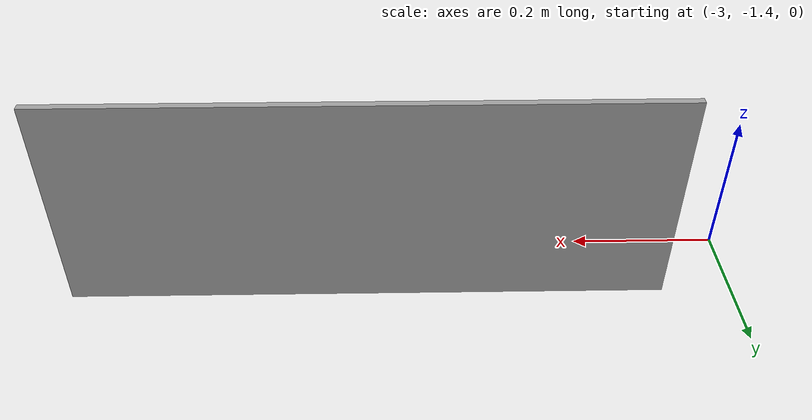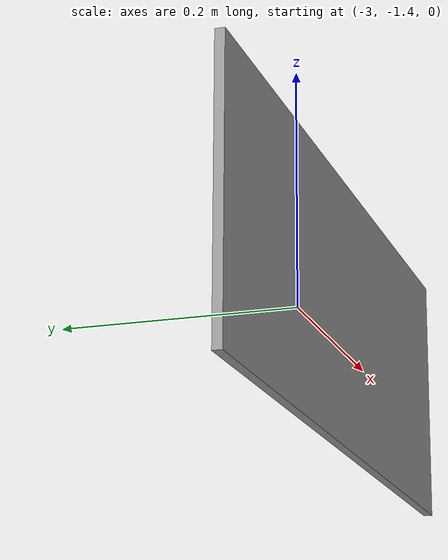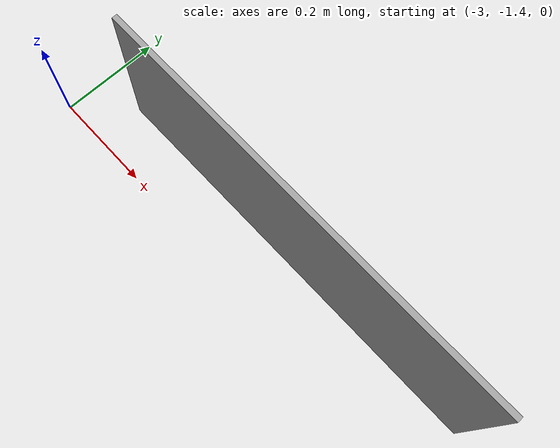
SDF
<?xml version='1.0'?>
<sdf version='1.7'>
  <model name='FUSTA_0.9'>
    <pose>-1.4525 -0.6525 0 0 -0 0</pose>
    <link name='Wall_2'>
      <collision name='Wall_2_Collision'>
        <geometry>
          <box>
            <size>0.81 0.01 0.3</size>
          </box>
        </geometry>
        <pose>0 0 0.15 0 -0 0</pose>
      </collision>
      <visual name='Wall_2_Visual'>
        <pose>0 0 0.15 0 -0 0</pose>
        <geometry>
          <box>
            <size>0.81 0.01 0.3</size>
          </box>
        </geometry>
        <material>
          <script>
            <uri>file://media/materials/scripts/gazebo.material</uri>
            <name>Gazebo/Grey</name>
          </script>
          <ambient>1 1 1 1</ambient>
        </material>
        <meta>
          <layer>0</layer>
        </meta>
      </visual>
      <pose>-1.0475 -0.6475 0 0 -0 0</pose>
    </link>
    <static>1</static>
  </model>
</sdf>
